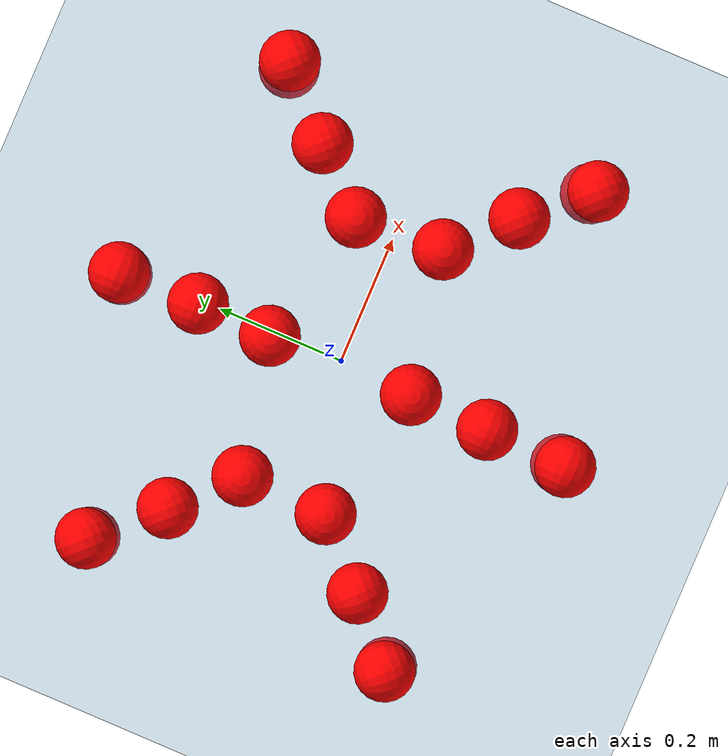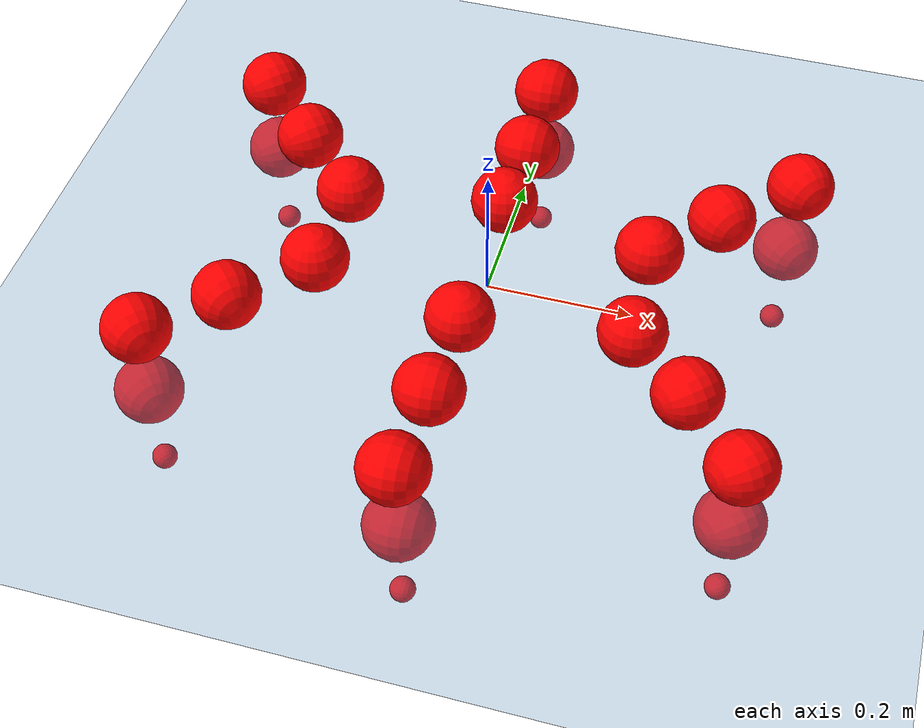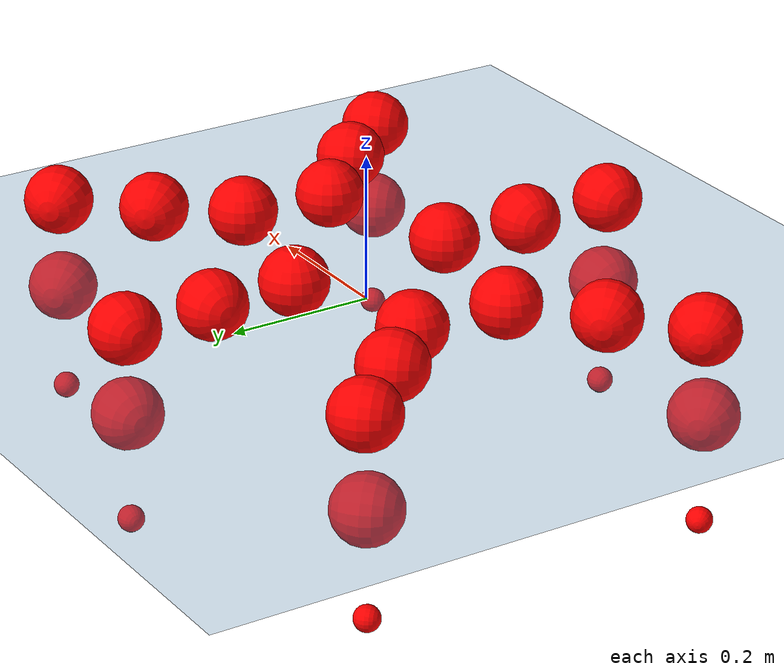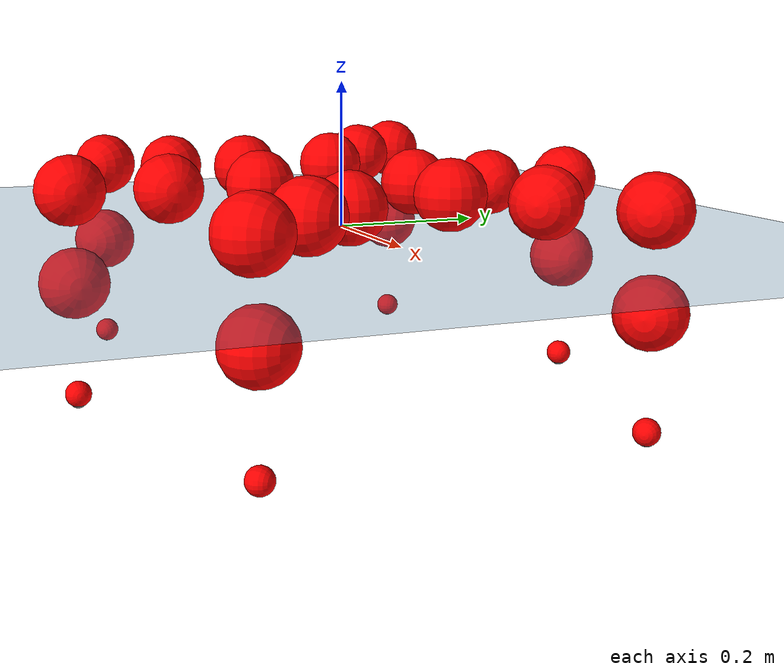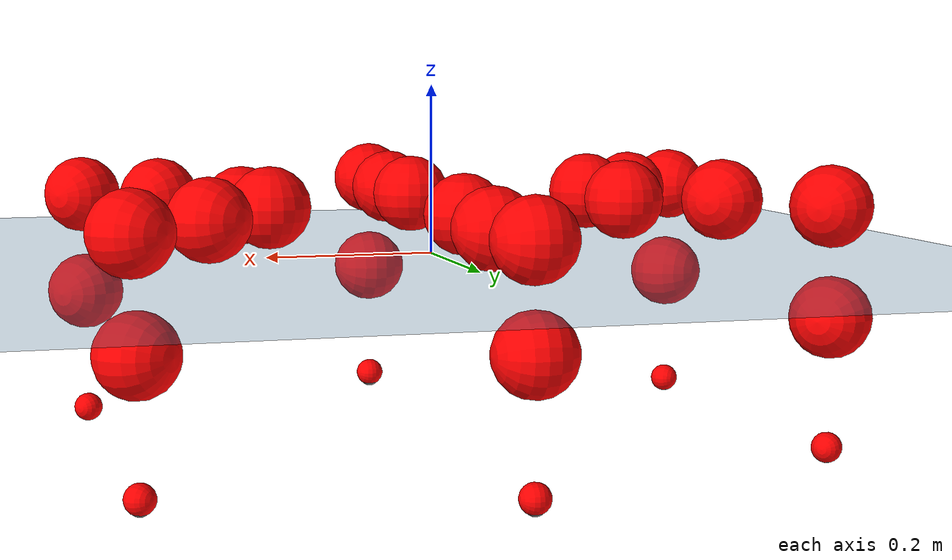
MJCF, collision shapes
<mujoco model="Golem">
  <compiler angle="radian" assetdir="assets" balanceinertia="true" inertiafromgeom="false"/>

  <option timestep="0.005" density="1.2" viscosity="2e-05"/>

  <size nkey="1"/>

  <visual>
    <quality shadowsize="8192"/>
    <map shadowclip="0.5"/>
  </visual>

  <default>
    <default class="/">
      <joint armature="0.01" damping="0.01" frictionloss="0.01"/>
      <geom contype="0" conaffinity="0" group="1" solref="-1000 -80"/>
      <site size="0.01 0.005 0.005" group="5"/>
      <general forcelimited="true" biastype="affine" gainprm="25" biasprm="0 -25 -0.5"/>
      <default class="visual">
        <geom type="mesh" group="2"/>
      </default>
      <default class="collision">
        <geom group="3"/>
      </default>
      <default class="foot">
        <geom size="0.01 0 0" condim="6" group="4" priority="1" solimp="0.015 1 0.01"/>
      </default>
      <default class="reward_collision_sphere">
        <geom group="5" rgba="1 0 0 1"/>
      </default>
    </default>
  </default>

  <asset>
    <texture type="skybox" colorspace="auto" name="//unnamed_texture_0" builtin="gradient" rgb1="0.95 0.95 0.95" rgb2="0.95 0.95 0.95" width="100" height="600"/>
    <texture type="2d" colorspace="auto" name="texplane" builtin="checker" rgb1="0.345 0.575 0.748" rgb2="0.345 0.575 0.748" markrgb="1 1 1" width="512" height="512"/>
    <material name="MatPlane" class="/" texture="texplane" texuniform="true" texrepeat="2 2" specular="0.9"/>
    <mesh name="body" class="/" file="body.stl" scale="0.001 0.001 0.001"/>
    <mesh name="coxa" class="/" file="coxa.stl" scale="0.001 0.001 0.001"/>
    <mesh name="femur" class="/" file="femur.stl" scale="0.001 0.001 0.001"/>
    <mesh name="tibia" class="/" file="tibia.stl" scale="0.001 0.001 0.001"/>
    <mesh name="tarsus" class="/" file="tarsus.stl" scale="0.001 0.001 0.001"/>
  </asset>

  <worldbody>
    <geom name="floor" class="/" size="100 100 0.125" type="plane" group="0" material="MatPlane"/>
    <light name="toplight_shadow" class="/" pos="0 0 5" dir="0.0990148 0.0990148 -0.990148" type="directional" ambient="0.04 0.04 0.04" diffuse="0.55 0.55 0.55" specular="0.12 0.12 0.12"/>
    <light name="toplight_fill" class="/" pos="0 0 5" dir="0.0990148 0.0990148 -0.990148" type="directional" castshadow="false" ambient="0.04 0.04 0.04" diffuse="0.3 0.3 0.3" specular="0.08 0.08 0.08"/>
    <body name="trunk" pos="-0.00498506 -0.000458567 7.17767e-05" quat="1 -9.64941e-05 0.000127464 -1.10234e-05">
      <inertial pos="0.00236294 0.00211177 -0.00487356" quat="0.999994 -0.000282391 -0.00340261 0.000670448" mass="6.26295" diaginertia="0.0557716 0.0260534 0.00698689"/>
      <joint name="//unnamed_joint_0" type="free"/>
      <geom name="//unnamed_geom_1" class="/" pos="0 0 0.0594406" quat="1 0 0 0" type="mesh" rgba="0.9 0.9 0.9 1" mesh="body"/>
      <site name="imu" class="/" pos="0.160533 -0.0186858 0.103147" size="0.011735"/>
      <camera name="track" class="/" pos="0 -2.39387 0" quat="0.707107 0.707107 0 0" mode="trackcom"/>
      <camera name="ego_camera" class="/" pos="0.181324 0 0.0928759" quat="-0.5 -0.5 0.5 0.5"/>
      <body name="coxa_RR" pos="-0.246211 -0.0987989 0.0646308" quat="0.382626 -0.000110455 -0.000154336 -0.923903">
        <inertial pos="0.000381115 0.00564597 -0.000938454" quat="0.999966 0.0045764 -0.00248246 -0.00644128" mass="0.356289" diaginertia="0.0553878 0.0258413 0.00731591"/>
        <joint name="coxa_joint_RR" class="/" pos="0 0 0" axis="0.00188087 0.00323449 -0.999993" stiffness="0.0243889" range="-3.12377 3.1267" armature="0.0134437" damping="0.000535506" frictionloss="0.0115322"/>
        <geom name="//unnamed_geom_2" class="/" type="mesh" rgba="0.2 0.2 0.2 1" mesh="coxa"/>
        <geom name="//unnamed_geom_3" class="reward_collision_sphere" size="0.0469399" pos="-0.041844 0 0"/>
        <body name="femur_RR" pos="0.0870867 3.19096e-05 -0.00452645" quat="0.500521 -0.499725 0.499913 0.49984">
          <inertial pos="-0.000597928 -0.00144694 -0.000345664" quat="0.999951 0.00866025 0.00320761 -0.0036028" mass="0.321893" diaginertia="0.0527254 0.0250555 0.00631526"/>
          <joint name="femur_joint_RR" class="/" pos="0 0 0" axis="-0.011516 0.00332666 -0.999928" stiffness="0.0210536" range="-3.06695 3.16864" armature="0.0103976" damping="0" frictionloss="0.00992512"/>
          <geom name="//unnamed_geom_4" class="/" type="mesh" rgba="0.9 0.9 0.9 1" mesh="femur"/>
          <geom name="//unnamed_geom_5" class="reward_collision_sphere" size="0.0469399"/>
          <body name="tibia_RR" pos="0.00298386 -0.124659 -0.00574851" quat="0.00240653 0.999996 -0.00116958 -0.000582905">
            <inertial pos="0.00366418 -0.00240331 -0.000738314" quat="0.999996 -0.00272099 -0.000637697 7.5522e-05" mass="0.315417" diaginertia="0.0517916 0.0240581 0.00702636"/>
            <joint name="tibia_joint_RR" class="/" pos="0 0 0" axis="0.0120881 -0.0128664 0.999844" range="-3.12132 3.12506" armature="0.0103251" damping="0.00602629" frictionloss="0.0118727"/>
            <geom name="//unnamed_geom_6" class="/" type="mesh" rgba="0.2 0.2 0.2 1" mesh="tibia"/>
            <geom name="//unnamed_geom_7" class="reward_collision_sphere" size="0.0469399"/>
            <body name="tarsus_RR" pos="0.120292 0.002039 -0.00338572" quat="1 -1.73634e-05 -3.26465e-05 -2.02901e-05">
              <inertial pos="0.0804613 0.000140203 0.000787597" quat="0.490103 0.503104 0.503283 0.50338" mass="0.317776" diaginertia="0.0542934 0.0248218 0.00675336"/>
              <joint name="tarsus_joint_RR" class="/" pos="0 0 0" axis="-0.00682958 0.00541243 0.999962" range="-3.06812 3.11931" armature="0.0104366" damping="0.0477319" frictionloss="0.0113943"/>
              <geom name="//unnamed_geom_8" class="/" type="mesh" rgba="0.9 0.9 0.9 1" mesh="tarsus"/>
              <geom name="foot_1" class="foot" size="0.0116256" pos="0.156217 0 0" quat="0 -0.707107 0 0.707107"/>
              <geom name="//unnamed_geom_10" class="reward_collision_sphere" size="0.0469399"/>
              <geom name="//unnamed_geom_11" class="reward_collision_sphere" size="0.0176025" pos="0.149941 0 0"/>
              <site name="foot_1" class="foot" pos="0.156217 0 0" quat="0 -0.707107 0 0.707107" size="0.011735"/>
            </body>
          </body>
        </body>
      </body>
      <body name="coxa_RM" pos="-0.000728936 -0.158556 0.0623382" quat="0.707241 -1.46135e-05 -0.000324047 -0.706972">
        <inertial pos="-0.00184227 0.000120314 -0.000691739" quat="0.999992 0.00377203 0.000211334 -0.00149073" mass="0.321664" diaginertia="0.0530785 0.0264065 0.00685349"/>
        <joint name="coxa_joint_RM" class="/" pos="0 0 0" axis="0.00922869 0.00553819 -0.999942" range="-3.16936 3.18335" armature="0.012088" damping="0.0211208" frictionloss="0.015639"/>
        <geom name="//unnamed_geom_12" class="/" type="mesh" rgba="0.2 0.2 0.2 1" mesh="coxa"/>
        <geom name="//unnamed_geom_13" class="reward_collision_sphere" size="0.0469399" pos="-0.041844 0 0"/>
        <body name="femur_RM" pos="0.0847482 -0.00319392 -0.000623532" quat="0.498225 -0.499838 0.500669 0.501262">
          <inertial pos="0.00232409 -0.00126822 -0.000279572" quat="0.999966 -0.00771848 -0.00226098 0.00203769" mass="0.296439" diaginertia="0.0490164 0.0236314 0.00638274"/>
          <joint name="femur_joint_RM" class="/" pos="0 0 0" axis="0.00144202 -0.00209561 -0.999997" range="-3.10211 3.1548" armature="0.0113122" damping="0.00300713" frictionloss="0.0119431"/>
          <geom name="//unnamed_geom_14" class="/" type="mesh" rgba="0.9 0.9 0.9 1" mesh="femur"/>
          <geom name="//unnamed_geom_15" class="reward_collision_sphere" size="0.0469399"/>
          <body name="tibia_RM" pos="-0.00330341 -0.130161 -0.00549156" quat="0.000228439 1 0.000159484 -0.000328389">
            <inertial pos="-0.00130399 0.00548337 0.000707017" quat="0.999809 -0.00720959 0.0168205 -0.00686584" mass="0.331337" diaginertia="0.0517543 0.0223476 0.00657206"/>
            <joint name="tibia_joint_RM" class="/" pos="0 0 0" axis="-0.000271114 0.00372895 0.999993" range="-3.06093 3.00731" armature="0.0120333" damping="0.0183025" frictionloss="0.0131238"/>
            <geom name="//unnamed_geom_16" class="/" type="mesh" rgba="0.2 0.2 0.2 1" mesh="tibia"/>
            <geom name="//unnamed_geom_17" class="reward_collision_sphere" size="0.0469399"/>
            <body name="tarsus_RM" pos="0.121963 -0.00170901 -0.000974134" quat="1 -0.000309971 -0.000114249 -0.000166561">
              <inertial pos="0.0866604 0.00128024 -0.00209694" quat="0.502804 0.50347 0.47832 0.5147" mass="0.302267" diaginertia="0.0552632 0.0247376 0.00713034"/>
              <joint name="tarsus_joint_RM" class="/" pos="0 0 0" axis="-0.00382628 0.00292931 0.999988" stiffness="0.00345182" range="-3.15703 3.09487" armature="0.0124091" damping="0" frictionloss="0.0119665"/>
              <geom name="//unnamed_geom_18" class="/" type="mesh" rgba="0.9 0.9 0.9 1" mesh="tarsus"/>
              <geom name="foot_2" class="foot" size="0.012693" pos="0.156217 0 0" quat="0 -0.707107 0 0.707107"/>
              <geom name="//unnamed_geom_20" class="reward_collision_sphere" size="0.0469399"/>
              <geom name="//unnamed_geom_21" class="reward_collision_sphere" size="0.0176025" pos="0.149941 0 0"/>
              <site name="foot_2" class="foot" pos="0.156217 0 0" quat="0 -0.707107 0 0.707107" size="0.011735"/>
            </body>
          </body>
        </body>
      </body>
      <body name="coxa_RF" pos="0.249943 -0.104686 0.0557724" quat="0.924169 -0.000292726 0.0011986 -0.381983">
        <inertial pos="-0.00180012 2.07111e-06 0.000931827" quat="1 -0.000272835 -0.00067209 -0.000141109" mass="0.331252" diaginertia="0.052811 0.0257862 0.00701121"/>
        <joint name="coxa_joint_RF" class="/" pos="0 0 0" axis="0.000609961 -0.001354 -0.999999" stiffness="0.00630883" range="-3.12206 3.18458" armature="0.00986477" damping="0.034794" frictionloss="0.012658"/>
        <geom name="//unnamed_geom_22" class="/" type="mesh" rgba="0.2 0.2 0.2 1" mesh="coxa"/>
        <geom name="//unnamed_geom_23" class="reward_collision_sphere" size="0.0469399" pos="-0.041844 0 0"/>
        <body name="femur_RF" pos="0.0821469 0.000321611 0.00631785" quat="0.500315 -0.499515 0.500536 0.499634">
          <inertial pos="0.00122028 0.000956511 0.00123141" quat="0.999986 -0.00150837 0.00386402 -0.00323423" mass="0.319828" diaginertia="0.0527891 0.0245659 0.00647993"/>
          <joint name="femur_joint_RF" class="/" pos="0 0 0" axis="-8.91981e-05 0.000336208 -1" range="-3.03365 3.1775" armature="0.0138832" damping="0.0096083" frictionloss="0.0103217"/>
          <geom name="//unnamed_geom_24" class="/" type="mesh" rgba="0.9 0.9 0.9 1" mesh="femur"/>
          <geom name="//unnamed_geom_25" class="reward_collision_sphere" size="0.0469399"/>
          <body name="tibia_RF" pos="0.00248528 -0.125925 -0.00619631" quat="-0.000301452 1 -7.93604e-05 0.000315721">
            <inertial pos="0.0057755 -0.00110321 -0.00258098" quat="0.999998 0.00100827 0.000797985 -0.00138348" mass="0.314705" diaginertia="0.054699 0.025056 0.00724873"/>
            <joint name="tibia_joint_RF" class="/" pos="0 0 0" axis="-0.0268327 0.00296792 0.999636" stiffness="0.00304094" range="-3.18485 3.24716" armature="0.0109055" damping="0.020007" frictionloss="0.0115231"/>
            <geom name="//unnamed_geom_26" class="/" type="mesh" rgba="0.2 0.2 0.2 1" mesh="tibia"/>
            <geom name="//unnamed_geom_27" class="reward_collision_sphere" size="0.0469399"/>
            <body name="tarsus_RF" pos="0.122627 -0.00473593 -0.00310322" quat="0.999997 -0.00206646 -0.000585407 0.000970306">
              <inertial pos="0.0845029 0.00248468 0.000116148" quat="0.495956 0.500416 0.502154 0.501451" mass="0.313475" diaginertia="0.0540768 0.023677 0.00684005"/>
              <joint name="tarsus_joint_RF" class="/" pos="0 0 0" axis="-0.00220247 -0.00227826 0.999995" range="-3.1672 3.09372" armature="0.0114075" damping="0.00203693" frictionloss="0.0115319"/>
              <geom name="//unnamed_geom_28" class="/" type="mesh" rgba="0.9 0.9 0.9 1" mesh="tarsus"/>
              <geom name="foot_3" class="foot" size="0.0107521" pos="0.156217 0 0" quat="0 -0.707107 0 0.707107"/>
              <geom name="//unnamed_geom_30" class="reward_collision_sphere" size="0.0469399"/>
              <geom name="//unnamed_geom_31" class="reward_collision_sphere" size="0.0176025" pos="0.149941 0 0"/>
              <site name="foot_3" class="foot" pos="0.156217 0 0" quat="0 -0.707107 0 0.707107" size="0.011735"/>
            </body>
          </body>
        </body>
      </body>
      <body name="coxa_LR" pos="-0.242829 0.0983268 0.0646885" quat="0.382193 -0.00022307 0.000499058 0.924083">
        <inertial pos="0.00452952 0.000269693 0.00630646" quat="0.999631 -0.0181858 0.0138627 -0.014678" mass="0.32124" diaginertia="0.0520041 0.0220615 0.006913"/>
        <joint name="coxa_joint_LR" class="/" pos="0 0 0" axis="0.00823531 -0.0219049 -0.999726" range="-3.18161 3.13622" armature="0.0119466" damping="0" frictionloss="0.0133178"/>
        <geom name="//unnamed_geom_32" class="/" type="mesh" rgba="0.2 0.2 0.2 1" mesh="coxa"/>
        <geom name="//unnamed_geom_33" class="reward_collision_sphere" size="0.0469399" pos="-0.041844 0 0"/>
        <body name="femur_LR" pos="0.0807347 0.00261889 0.00475325" quat="0.49987 -0.499725 0.500154 0.500251">
          <inertial pos="-0.00139415 0.00179244 -0.00183279" quat="1 -0.000287253 -0.000100296 -0.000273951" mass="0.3239" diaginertia="0.0527399 0.023808 0.00679075"/>
          <joint name="femur_joint_LR" class="/" pos="0 0 0" axis="-0.00159625 -0.00216889 0.999996" stiffness="0.00153017" range="-3.09821 3.10772" armature="0.013109" damping="0.0129694" frictionloss="0.0151887"/>
          <geom name="//unnamed_geom_34" class="/" type="mesh" rgba="0.9 0.9 0.9 1" mesh="femur"/>
          <geom name="//unnamed_geom_35" class="reward_collision_sphere" size="0.0469399"/>
          <body name="tibia_LR" pos="0.00183047 -0.131856 -0.00368456" quat="0.00194036 0.999998 -0.000497254 -0.000746069">
            <inertial pos="0.00107019 0.00142387 0.000626133" quat="0.999927 0.00385082 0.00611026 0.00970476" mass="0.33238" diaginertia="0.0539142 0.0240472 0.00675622"/>
            <joint name="tibia_joint_LR" class="/" pos="0 0 0" axis="-0.001129 0.000937184 -0.999999" stiffness="0.0111173" range="-3.14415 3.19156" armature="0.0107867" damping="0" frictionloss="0.0127314"/>
            <geom name="//unnamed_geom_36" class="/" type="mesh" rgba="0.2 0.2 0.2 1" mesh="tibia"/>
            <geom name="//unnamed_geom_37" class="reward_collision_sphere" size="0.0469399"/>
            <body name="tarsus_LR" pos="0.126211 0.00108796 -0.00246591" quat="0.999997 0.00121189 -0.00105175 -0.00175777">
              <inertial pos="0.0777944 0.000111461 0.00564041" quat="0.501437 0.500855 0.497121 0.500576" mass="0.334674" diaginertia="0.0535467 0.0257303 0.00692341"/>
              <joint name="tarsus_joint_LR" class="/" pos="0 0 0" axis="-0.00696251 0.0185357 -0.999804" range="-3.07575 3.20309" armature="0.0129148" damping="0.00665784" frictionloss="0.0127137"/>
              <geom name="//unnamed_geom_38" class="/" type="mesh" rgba="0.9 0.9 0.9 1" mesh="tarsus"/>
              <geom name="foot_4" class="foot" size="0.0115888" pos="0.156217 0 0" quat="0.707107 0 -0.707107 0"/>
              <geom name="//unnamed_geom_40" class="reward_collision_sphere" size="0.0469399"/>
              <geom name="//unnamed_geom_41" class="reward_collision_sphere" size="0.0176025" pos="0.149941 0 0"/>
              <site name="foot_4" class="foot" pos="0.156217 0 0" quat="0.707107 0 -0.707107 0" size="0.011735"/>
            </body>
          </body>
        </body>
      </body>
      <body name="coxa_LM" pos="-0.00256951 0.156065 0.0562307" quat="0.707016 0.000455004 8.79675e-05 0.707198">
        <inertial pos="0.00256302 -0.00172253 0.00250499" quat="0.999988 -0.00257083 0.00241708 0.00346213" mass="0.317479" diaginertia="0.0517134 0.0247494 0.00679973"/>
        <joint name="coxa_joint_LM" class="/" pos="0 0 0" axis="-0.00538293 -0.0107967 -0.999927" stiffness="0.00504343" range="-3.20155 3.17016" armature="0.0122438" damping="2.41016e-05" frictionloss="0.0101917"/>
        <geom name="//unnamed_geom_42" class="/" type="mesh" rgba="0.2 0.2 0.2 1" mesh="coxa"/>
        <geom name="//unnamed_geom_43" class="reward_collision_sphere" size="0.0469399" pos="-0.041844 0 0"/>
        <body name="femur_LM" pos="0.0771733 -0.0022169 -0.00535061" quat="0.499531 -0.500267 0.500603 0.499598">
          <inertial pos="0.000617342 0.00316101 -0.00608206" quat="0.999699 -0.015786 0.0047316 -0.0182021" mass="0.332916" diaginertia="0.0543736 0.0273088 0.00723052"/>
          <joint name="femur_joint_LM" class="/" pos="0 0 0" axis="0.00395168 -0.00127169 0.999991" stiffness="0.00428857" range="-3.14906 3.1942" armature="0.0115728" damping="0.0196638" frictionloss="0.01127"/>
          <geom name="//unnamed_geom_44" class="/" type="mesh" rgba="0.9 0.9 0.9 1" mesh="femur"/>
          <geom name="//unnamed_geom_45" class="reward_collision_sphere" size="0.0469399"/>
          <body name="tibia_LM" pos="-0.000576986 -0.128284 0.00362038" quat="0.000139441 0.999995 -0.00260459 0.00156263">
            <inertial pos="0.00182141 0.00614612 0.0018345" quat="0.999984 -0.00550631 0.00118814 -0.000276909" mass="0.316018" diaginertia="0.053816 0.0232803 0.00704651"/>
            <joint name="tibia_joint_LM" class="/" pos="0 0 0" axis="-0.00385402 -0.000229229 -0.999993" range="-3.14896 3.17652" armature="0.00952838" damping="0.0372325" frictionloss="0.0116735"/>
            <geom name="//unnamed_geom_46" class="/" type="mesh" rgba="0.2 0.2 0.2 1" mesh="tibia"/>
            <geom name="//unnamed_geom_47" class="reward_collision_sphere" size="0.0469399"/>
            <body name="tarsus_LM" pos="0.118127 -0.00020854 -0.000851165" quat="0.999995 0.00284768 0.000977296 -0.00136561">
              <inertial pos="0.0851086 -0.000366526 -4.01799e-05" quat="0.499385 0.500371 0.499586 0.500658" mass="0.341538" diaginertia="0.0557972 0.0256116 0.00724146"/>
              <joint name="tarsus_joint_LM" class="/" pos="0 0 0" axis="-0.00199137 -0.0037582 -0.999991" stiffness="0.0238461" range="-3.25963 3.18261" armature="0.00934127" damping="0.0395828" frictionloss="0.0124819"/>
              <geom name="//unnamed_geom_48" class="/" type="mesh" rgba="0.9 0.9 0.9 1" mesh="tarsus"/>
              <geom name="foot_5" class="foot" size="0.0124866" pos="0.156217 0 0" quat="0.707107 0 -0.707107 0"/>
              <geom name="//unnamed_geom_50" class="reward_collision_sphere" size="0.0469399"/>
              <geom name="//unnamed_geom_51" class="reward_collision_sphere" size="0.0176025" pos="0.149941 0 0"/>
              <site name="foot_5" class="foot" pos="0.156217 0 0" quat="0.707107 0 -0.707107 0" size="0.011735"/>
            </body>
          </body>
        </body>
      </body>
      <body name="coxa_LF" pos="0.242227 0.0947041 0.0645281" quat="0.923982 0.000801372 0.00036852 0.382435">
        <inertial pos="-0.000727847 0.00162951 -0.00126916" quat="0.999973 -0.00527476 0.005105 -0.000772409" mass="0.345708" diaginertia="0.057272 0.0260522 0.00714986"/>
        <joint name="coxa_joint_LF" class="/" pos="0 0 0" axis="-0.00393746 -0.000378152 -0.999992" stiffness="0.0308858" range="-3.15824 3.02012" armature="0.0096112" damping="0.0409338" frictionloss="0.0124761"/>
        <geom name="//unnamed_geom_52" class="/" type="mesh" rgba="0.2 0.2 0.2 1" mesh="coxa"/>
        <geom name="//unnamed_geom_53" class="reward_collision_sphere" size="0.0469399" pos="-0.041844 0 0"/>
        <body name="femur_LF" pos="0.0806869 0.00488792 -0.00387219" quat="0.500001 -0.501364 0.49824 0.50039">
          <inertial pos="-0.00570405 -0.000648886 0.00144141" quat="0.999939 -0.00844234 0.00713417 0.000751964" mass="0.305066" diaginertia="0.0511614 0.0239521 0.0068066"/>
          <joint name="femur_joint_LF" class="/" pos="0 0 0" axis="-0.00252805 0.00104732 0.999996" range="-3.15543 3.1884" armature="0.0096553" damping="0" frictionloss="0.0103942"/>
          <geom name="//unnamed_geom_54" class="/" type="mesh" rgba="0.9 0.9 0.9 1" mesh="femur"/>
          <geom name="//unnamed_geom_55" class="reward_collision_sphere" size="0.0469399"/>
          <body name="tibia_LF" pos="0.00287812 -0.133986 -0.000945648" quat="-0.000590175 1 0.000532701 0.000511484">
            <inertial pos="-0.000497634 -0.00199321 0.000990863" quat="0.999943 0.00518279 -0.00401897 0.00836781" mass="0.321278" diaginertia="0.051556 0.0251803 0.00687069"/>
            <joint name="tibia_joint_LF" class="/" pos="0 0 0" axis="-0.00812385 -0.000837557 -0.999967" stiffness="0.00557567" range="-3.14615 3.17342" armature="0.0122046" damping="0.015543" frictionloss="0.0119375"/>
            <geom name="//unnamed_geom_56" class="/" type="mesh" rgba="0.2 0.2 0.2 1" mesh="tibia"/>
            <geom name="//unnamed_geom_57" class="reward_collision_sphere" size="0.0469399"/>
            <body name="tarsus_LF" pos="0.125806 -0.00249223 -0.00306452" quat="0.999997 -0.00117199 0.00184999 0.0011631">
              <inertial pos="0.0856203 0.00219598 -0.000514332" quat="0.495533 0.502953 0.49559 0.505841" mass="0.332107" diaginertia="0.0553501 0.0243822 0.00713182"/>
              <joint name="tarsus_joint_LF" class="/" pos="0 0 0" axis="-0.00251797 -0.000347042 -0.999997" stiffness="0.00433086" range="-3.09266 3.14933" armature="0.0119109" damping="0.0381423" frictionloss="0.0107506"/>
              <geom name="//unnamed_geom_58" class="/" type="mesh" rgba="0.9 0.9 0.9 1" mesh="tarsus"/>
              <geom name="foot_6" class="foot" size="0.0122674" pos="0.156217 0 0" quat="0.707107 0 -0.707107 0"/>
              <geom name="//unnamed_geom_60" class="reward_collision_sphere" size="0.0469399"/>
              <geom name="//unnamed_geom_61" class="reward_collision_sphere" size="0.0176025" pos="0.149941 0 0"/>
              <site name="foot_6" class="foot" pos="0.156217 0 0" quat="0.707107 0 -0.707107 0" size="0.011735"/>
            </body>
          </body>
        </body>
      </body>
    </body>
  </worldbody>

  <contact>
    <pair class="/" geom1="floor" geom2="foot_1" name="//unnamed_contact_0"/>
    <pair class="/" geom1="floor" geom2="foot_2" name="//unnamed_contact_1"/>
    <pair class="/" geom1="floor" geom2="foot_3" name="//unnamed_contact_2"/>
    <pair class="/" geom1="floor" geom2="foot_4" name="//unnamed_contact_3"/>
    <pair class="/" geom1="floor" geom2="foot_5" name="//unnamed_contact_4"/>
    <pair class="/" geom1="floor" geom2="foot_6" name="//unnamed_contact_5"/>
  </contact>

  <actuator>
    <general name="coxa_joint_RR" class="/" joint="coxa_joint_RR" forcerange="-9.2452 9.2452" gainprm="28.2893" biasprm="0 -28.2893 -0.548659"/>
    <general name="femur_joint_RR" class="/" joint="femur_joint_RR" forcerange="-8.6714 8.6714" gainprm="28.2893" biasprm="0 -28.2893 -0.548659"/>
    <general name="tibia_joint_RR" class="/" joint="tibia_joint_RR" forcerange="-8.36698 8.36698" gainprm="28.2893" biasprm="0 -28.2893 -0.548659"/>
    <general name="tarsus_joint_RR" class="/" joint="tarsus_joint_RR" forcerange="-7.85493 7.85493" gainprm="28.2893" biasprm="0 -28.2893 -0.548659"/>
    <general name="coxa_joint_RM" class="/" joint="coxa_joint_RM" forcerange="-10.3095 10.3095" gainprm="28.2893" biasprm="0 -28.2893 -0.548659"/>
    <general name="femur_joint_RM" class="/" joint="femur_joint_RM" forcerange="-7.78485 7.78485" gainprm="28.2893" biasprm="0 -28.2893 -0.548659"/>
    <general name="tibia_joint_RM" class="/" joint="tibia_joint_RM" forcerange="-8.7955 8.7955" gainprm="28.2893" biasprm="0 -28.2893 -0.548659"/>
    <general name="tarsus_joint_RM" class="/" joint="tarsus_joint_RM" forcerange="-9.20358 9.20358" gainprm="28.2893" biasprm="0 -28.2893 -0.548659"/>
    <general name="coxa_joint_RF" class="/" joint="coxa_joint_RF" forcerange="-10.0594 10.0594" gainprm="28.2893" biasprm="0 -28.2893 -0.548659"/>
    <general name="femur_joint_RF" class="/" joint="femur_joint_RF" forcerange="-8.58536 8.58536" gainprm="28.2893" biasprm="0 -28.2893 -0.548659"/>
    <general name="tibia_joint_RF" class="/" joint="tibia_joint_RF" forcerange="-10.4736 10.4736" gainprm="28.2893" biasprm="0 -28.2893 -0.548659"/>
    <general name="tarsus_joint_RF" class="/" joint="tarsus_joint_RF" forcerange="-8.64372 8.64372" gainprm="28.2893" biasprm="0 -28.2893 -0.548659"/>
    <general name="coxa_joint_LR" class="/" joint="coxa_joint_LR" forcerange="-8.65707 8.65707" gainprm="28.2893" biasprm="0 -28.2893 -0.548659"/>
    <general name="femur_joint_LR" class="/" joint="femur_joint_LR" forcerange="-8.91005 8.91005" gainprm="28.2893" biasprm="0 -28.2893 -0.548659"/>
    <general name="tibia_joint_LR" class="/" joint="tibia_joint_LR" forcerange="-8.22438 8.22438" gainprm="28.2893" biasprm="0 -28.2893 -0.548659"/>
    <general name="tarsus_joint_LR" class="/" joint="tarsus_joint_LR" forcerange="-9.08923 9.08923" gainprm="28.2893" biasprm="0 -28.2893 -0.548659"/>
    <general name="coxa_joint_LM" class="/" joint="coxa_joint_LM" forcerange="-7.60402 7.60402" gainprm="28.2893" biasprm="0 -28.2893 -0.548659"/>
    <general name="femur_joint_LM" class="/" joint="femur_joint_LM" forcerange="-8.66869 8.66869" gainprm="28.2893" biasprm="0 -28.2893 -0.548659"/>
    <general name="tibia_joint_LM" class="/" joint="tibia_joint_LM" forcerange="-7.96545 7.96545" gainprm="28.2893" biasprm="0 -28.2893 -0.548659"/>
    <general name="tarsus_joint_LM" class="/" joint="tarsus_joint_LM" forcerange="-8.93752 8.93752" gainprm="28.2893" biasprm="0 -28.2893 -0.548659"/>
    <general name="coxa_joint_LF" class="/" joint="coxa_joint_LF" forcerange="-10.5704 10.5704" gainprm="28.2893" biasprm="0 -28.2893 -0.548659"/>
    <general name="femur_joint_LF" class="/" joint="femur_joint_LF" forcerange="-8.63469 8.63469" gainprm="28.2893" biasprm="0 -28.2893 -0.548659"/>
    <general name="tibia_joint_LF" class="/" joint="tibia_joint_LF" forcerange="-9.33588 9.33588" gainprm="28.2893" biasprm="0 -28.2893 -0.548659"/>
    <general name="tarsus_joint_LF" class="/" joint="tarsus_joint_LF" forcerange="-8.60053 8.60053" gainprm="28.2893" biasprm="0 -28.2893 -0.548659"/>
  </actuator>

  <sensor>
    <gyro site="imu" name="imu_angular_velocity"/>
    <velocimeter site="imu" name="imu_linear_velocity"/>
    <framelinvel objtype="site" objname="foot_1" name="foot_1_global_linear_velocity"/>
    <framelinvel objtype="site" objname="foot_2" name="foot_2_global_linear_velocity"/>
    <framelinvel objtype="site" objname="foot_3" name="foot_3_global_linear_velocity"/>
    <framelinvel objtype="site" objname="foot_4" name="foot_4_global_linear_velocity"/>
    <framelinvel objtype="site" objname="foot_5" name="foot_5_global_linear_velocity"/>
    <framelinvel objtype="site" objname="foot_6" name="foot_6_global_linear_velocity"/>
  </sensor>

  <keyframe>
    <key name="home" qpos="0 0 0.1457 1 0 0 0 0 0 0 0 0 0 0 0 0 0 0 0 0 0 0 0 0 0 0 0 0 0 0 0"/>
  </keyframe>
</mujoco>
